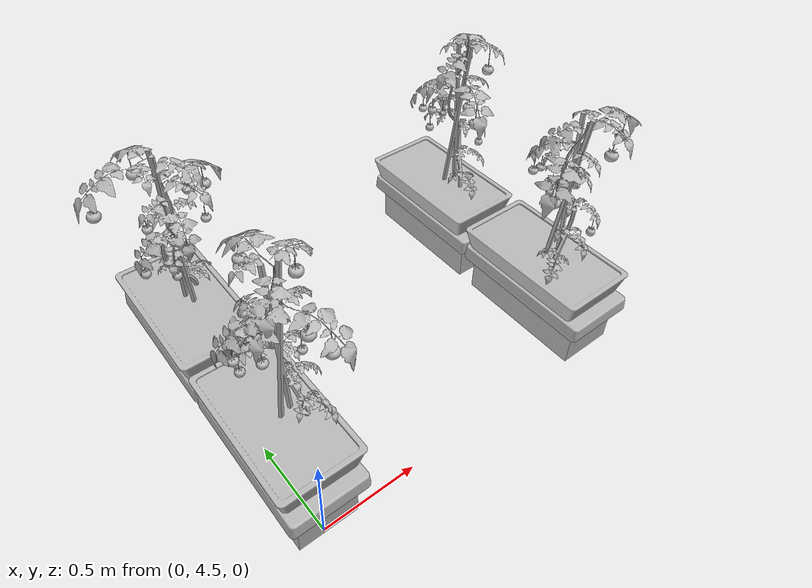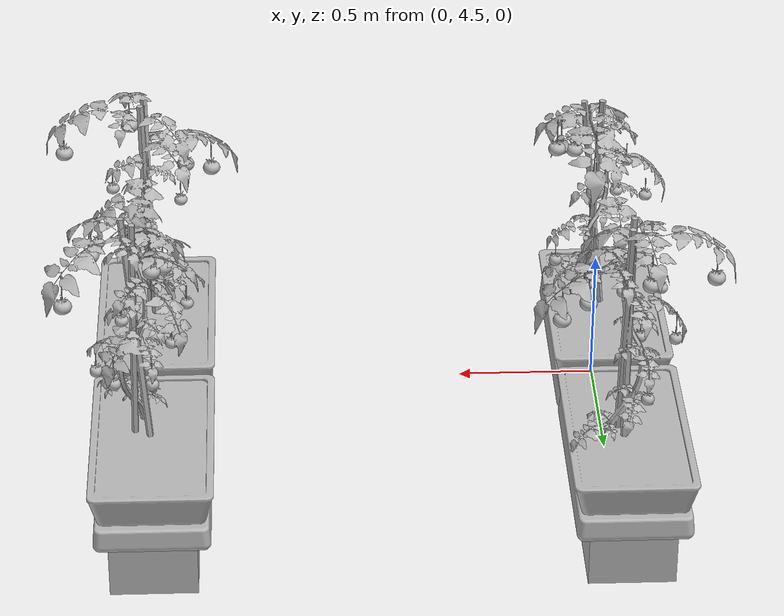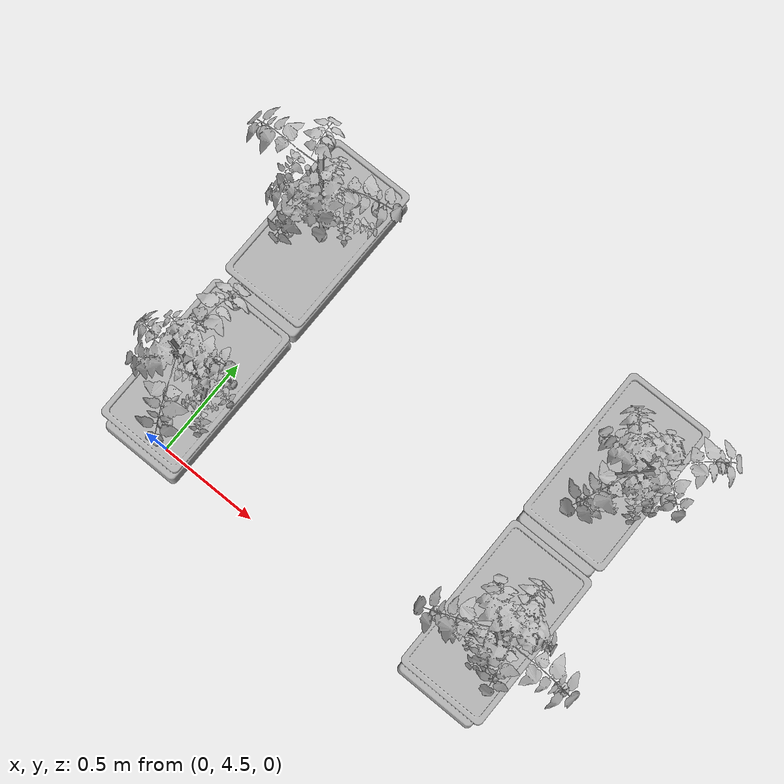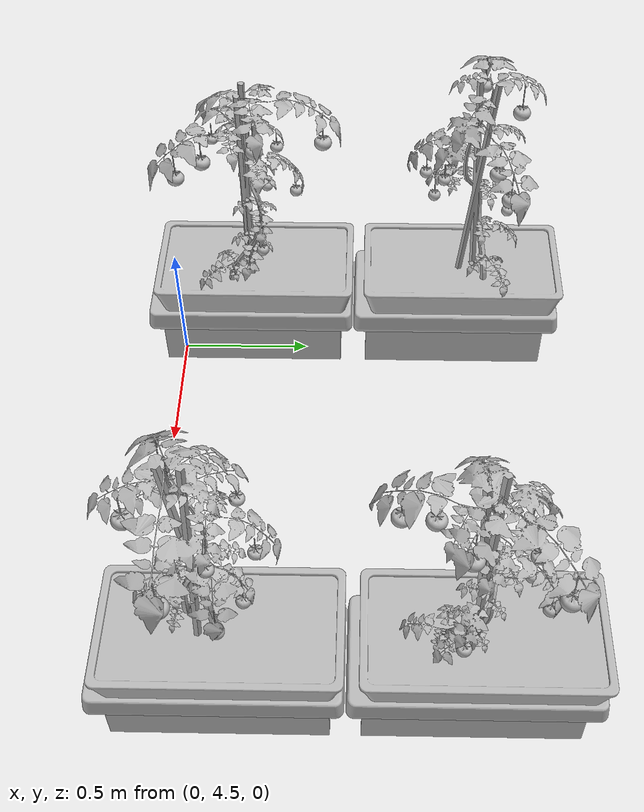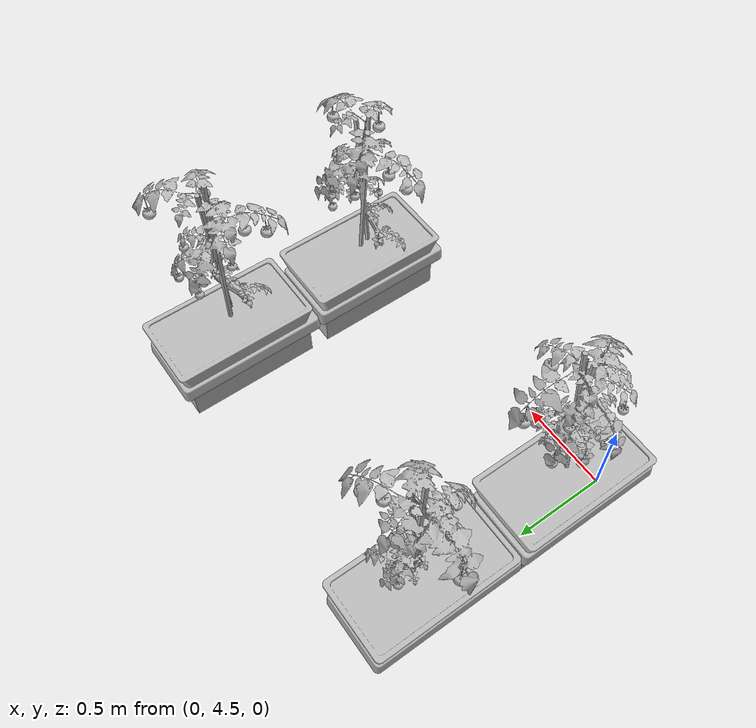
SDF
<sdf version="1.6">
 <world name="default">
  <model name="plant06">
   <static>0</static>
   <link name="tomato_plant_link">
    <inertial>
     <mass>20</mass>
     <inertia><ixx>1</ixx><ixy>0</ixy><ixz>0</ixz><iyy>1</iyy><iyz>0</iyz><izz>1</izz></inertia>
    </inertial>
    <visual name="visual">
     <geometry><mesh><uri>model://tomato_plant/meshes/tomato_plant.obj</uri></mesh></geometry>
    </visual>
    <collision name="collision">
     <pose>0 0 0.01 0 -0 0</pose>
     <geometry><cylinder><radius>0.2</radius><length>0.02</length></cylinder></geometry>
    </collision>
   </link>
   <link name="t_link_0">
    <pose>0.176111 0.046061 0.713729 0 -0 0</pose>
    <inertial>
     <mass>0.1</mass>
     <inertia><ixx>1</ixx><ixy>0</ixy><ixz>0</ixz><iyy>1</iyy><iyz>0</iyz><izz>1</izz></inertia>
    </inertial>
    <collision name="collision"><geometry><sphere><radius>0.02</radius></sphere></geometry></collision>
    <visual name="visual">
     <geometry><mesh><uri>model://green_tomato/meshes/green_tomato.obj</uri></mesh></geometry>
    </visual>
   </link>
   <joint name="t_joint_0" type="fixed">
    <parent>tomato_plant_link</parent>
    <child>t_link_0</child>
    <axis>
     <xyz>0 0 1</xyz>
     <use_parent_model_frame>1</use_parent_model_frame>
     <limit><lower>-1e+16</lower><upper>1e+16</upper></limit>
    </axis>
    <sensor name="force_torque" type="force_torque">
     <always_on>1</always_on>
     <update_rate>250</update_rate>
     <plugin name="breakable_0" filename="libBreakableJointPlugin.so">
      <breaking_force_N>20</breaking_force_N>
     </plugin>
    </sensor>
   </joint>
   <link name="t_link_1">
    <pose>0.063172 0.108629 0.685474 0 -0 0</pose>
    <inertial>
     <mass>0.1</mass>
     <inertia><ixx>1</ixx><ixy>0</ixy><ixz>0</ixz><iyy>1</iyy><iyz>0</iyz><izz>1</izz></inertia>
    </inertial>
    <collision name="collision"><geometry><sphere><radius>0.02</radius></sphere></geometry></collision>
    <visual name="visual">
     <geometry><mesh><uri>model://green_tomato/meshes/green_tomato.obj</uri></mesh></geometry>
    </visual>
   </link>
   <joint name="t_joint_1" type="fixed">
    <parent>tomato_plant_link</parent>
    <child>t_link_1</child>
    <axis>
     <xyz>0 0 1</xyz>
     <use_parent_model_frame>1</use_parent_model_frame>
     <limit><lower>-1e+16</lower><upper>1e+16</upper></limit>
    </axis>
    <sensor name="force_torque" type="force_torque">
     <always_on>1</always_on>
     <update_rate>250</update_rate>
     <plugin name="breakable_1" filename="libBreakableJointPlugin.so">
      <breaking_force_N>20</breaking_force_N>
     </plugin>
    </sensor>
   </joint>
   <link name="t_link_2">
    <pose>0.062027 -0.170581 0.614534 0 -0 0</pose>
    <inertial>
     <mass>0.1</mass>
     <inertia><ixx>1</ixx><ixy>0</ixy><ixz>0</ixz><iyy>1</iyy><iyz>0</iyz><izz>1</izz></inertia>
    </inertial>
    <collision name="collision"><geometry><sphere><radius>0.02</radius></sphere></geometry></collision>
    <visual name="visual">
     <geometry><mesh><uri>model://green_tomato/meshes/green_tomato.obj</uri></mesh></geometry>
    </visual>
   </link>
   <joint name="t_joint_2" type="fixed">
    <parent>tomato_plant_link</parent>
    <child>t_link_2</child>
    <axis>
     <xyz>0 0 1</xyz>
     <use_parent_model_frame>1</use_parent_model_frame>
     <limit><lower>-1e+16</lower><upper>1e+16</upper></limit>
    </axis>
    <sensor name="force_torque" type="force_torque">
     <always_on>1</always_on>
     <update_rate>250</update_rate>
     <plugin name="breakable_2" filename="libBreakableJointPlugin.so">
      <breaking_force_N>20</breaking_force_N>
     </plugin>
    </sensor>
   </joint>
   <link name="t_link_3">
    <pose>0.114746 0.0304 0.926457 0 -0 0</pose>
    <inertial>
     <mass>0.1</mass>
     <inertia><ixx>1</ixx><ixy>0</ixy><ixz>0</ixz><iyy>1</iyy><iyz>0</iyz><izz>1</izz></inertia>
    </inertial>
    <collision name="collision"><geometry><sphere><radius>0.02</radius></sphere></geometry></collision>
    <visual name="visual">
     <geometry><mesh><uri>model://yellow_tomato/meshes/yellow_tomato.obj</uri></mesh></geometry>
    </visual>
   </link>
   <joint name="t_joint_3" type="fixed">
    <parent>tomato_plant_link</parent>
    <child>t_link_3</child>
    <axis>
     <xyz>0 0 1</xyz>
     <use_parent_model_frame>1</use_parent_model_frame>
     <limit><lower>-1e+16</lower><upper>1e+16</upper></limit>
    </axis>
    <sensor name="force_torque" type="force_torque">
     <always_on>1</always_on>
     <update_rate>250</update_rate>
     <plugin name="breakable_3" filename="libBreakableJointPlugin.so">
      <breaking_force_N>20</breaking_force_N>
     </plugin>
    </sensor>
   </joint>
   <link name="t_link_4">
    <pose>0.003426 0.147925 0.840454 0 -0 0</pose>
    <inertial>
     <mass>0.1</mass>
     <inertia><ixx>1</ixx><ixy>0</ixy><ixz>0</ixz><iyy>1</iyy><iyz>0</iyz><izz>1</izz></inertia>
    </inertial>
    <collision name="collision"><geometry><sphere><radius>0.02</radius></sphere></geometry></collision>
    <visual name="visual">
     <geometry><mesh><uri>model://yellow_tomato/meshes/yellow_tomato.obj</uri></mesh></geometry>
    </visual>
   </link>
   <joint name="t_joint_4" type="fixed">
    <parent>tomato_plant_link</parent>
    <child>t_link_4</child>
    <axis>
     <xyz>0 0 1</xyz>
     <use_parent_model_frame>1</use_parent_model_frame>
     <limit><lower>-1e+16</lower><upper>1e+16</upper></limit>
    </axis>
    <sensor name="force_torque" type="force_torque">
     <always_on>1</always_on>
     <update_rate>250</update_rate>
     <plugin name="breakable_4" filename="libBreakableJointPlugin.so">
      <breaking_force_N>20</breaking_force_N>
     </plugin>
    </sensor>
   </joint>
   <link name="t_link_5">
    <pose>-0.12391 0.091553 0.91111 0 -0 0</pose>
    <inertial>
     <mass>0.1</mass>
     <inertia><ixx>1</ixx><ixy>0</ixy><ixz>0</ixz><iyy>1</iyy><iyz>0</iyz><izz>1</izz></inertia>
    </inertial>
    <collision name="collision"><geometry><sphere><radius>0.02</radius></sphere></geometry></collision>
    <visual name="visual">
     <geometry><mesh><uri>model://yellow_tomato/meshes/yellow_tomato.obj</uri></mesh></geometry>
    </visual>
   </link>
   <joint name="t_joint_5" type="fixed">
    <parent>tomato_plant_link</parent>
    <child>t_link_5</child>
    <axis>
     <xyz>0 0 1</xyz>
     <use_parent_model_frame>1</use_parent_model_frame>
     <limit><lower>-1e+16</lower><upper>1e+16</upper></limit>
    </axis>
    <sensor name="force_torque" type="force_torque">
     <always_on>1</always_on>
     <update_rate>250</update_rate>
     <plugin name="breakable_5" filename="libBreakableJointPlugin.so">
      <breaking_force_N>20</breaking_force_N>
     </plugin>
    </sensor>
   </joint>
   <link name="t_link_6">
    <pose>-0.23014 -0.132697 0.911579 0 -0 0</pose>
    <inertial>
     <mass>0.1</mass>
     <inertia><ixx>1</ixx><ixy>0</ixy><ixz>0</ixz><iyy>1</iyy><iyz>0</iyz><izz>1</izz></inertia>
    </inertial>
    <collision name="collision"><geometry><sphere><radius>0.03</radius></sphere></geometry></collision>
    <visual name="visual">
     <geometry><mesh><uri>model://red_tomato/meshes/red_tomato.obj</uri></mesh></geometry>
    </visual>
   </link>
   <joint name="t_joint_6" type="fixed">
    <parent>tomato_plant_link</parent>
    <child>t_link_6</child>
    <axis>
     <xyz>0 0 1</xyz>
     <use_parent_model_frame>1</use_parent_model_frame>
     <limit><lower>-1e+16</lower><upper>1e+16</upper></limit>
    </axis>
    <sensor name="force_torque" type="force_torque">
     <always_on>1</always_on>
     <update_rate>250</update_rate>
     <plugin name="breakable_6" filename="libBreakableJointPlugin.so">
      <breaking_force_N>20</breaking_force_N>
     </plugin>
    </sensor>
   </joint>
   <link name="t_link_7">
    <pose>-0.139776 -0.09326 0.950185 0 -0 0</pose>
    <inertial>
     <mass>0.1</mass>
     <inertia><ixx>1</ixx><ixy>0</ixy><ixz>0</ixz><iyy>1</iyy><iyz>0</iyz><izz>1</izz></inertia>
    </inertial>
    <collision name="collision"><geometry><sphere><radius>0.03</radius></sphere></geometry></collision>
    <visual name="visual">
     <geometry><mesh><uri>model://red_tomato/meshes/red_tomato.obj</uri></mesh></geometry>
    </visual>
   </link>
   <joint name="t_joint_7" type="fixed">
    <parent>tomato_plant_link</parent>
    <child>t_link_7</child>
    <axis>
     <xyz>0 0 1</xyz>
     <use_parent_model_frame>1</use_parent_model_frame>
     <limit><lower>-1e+16</lower><upper>1e+16</upper></limit>
    </axis>
    <sensor name="force_torque" type="force_torque">
     <always_on>1</always_on>
     <update_rate>250</update_rate>
     <plugin name="breakable_7" filename="libBreakableJointPlugin.so">
      <breaking_force_N>20</breaking_force_N>
     </plugin>
    </sensor>
   </joint>
   <link name="t_link_8">
    <pose>0.284181 -0.063758 1.01928 0 -0 0</pose>
    <inertial>
     <mass>0.1</mass>
     <inertia><ixx>1</ixx><ixy>0</ixy><ixz>0</ixz><iyy>1</iyy><iyz>0</iyz><izz>1</izz></inertia>
    </inertial>
    <collision name="collision"><geometry><sphere><radius>0.03</radius></sphere></geometry></collision>
    <visual name="visual">
     <geometry><mesh><uri>model://red_tomato/meshes/red_tomato.obj</uri></mesh></geometry>
    </visual>
   </link>
   <joint name="t_joint_8" type="fixed">
    <parent>tomato_plant_link</parent>
    <child>t_link_8</child>
    <axis>
     <xyz>0 0 1</xyz>
     <use_parent_model_frame>1</use_parent_model_frame>
     <limit><lower>-1e+16</lower><upper>1e+16</upper></limit>
    </axis>
    <sensor name="force_torque" type="force_torque">
     <always_on>1</always_on>
     <update_rate>250</update_rate>
     <plugin name="breakable_8" filename="libBreakableJointPlugin.so">
      <breaking_force_N>20</breaking_force_N>
     </plugin>
    </sensor>
   </joint>
   <link name="t_link_9">
    <pose>0.055319 -0.176349 1.06525 0 -0 0</pose>
    <inertial>
     <mass>0.1</mass>
     <inertia><ixx>1</ixx><ixy>0</ixy><ixz>0</ixz><iyy>1</iyy><iyz>0</iyz><izz>1</izz></inertia>
    </inertial>
    <collision name="collision"><geometry><sphere><radius>0.03</radius></sphere></geometry></collision>
    <visual name="visual">
     <geometry><mesh><uri>model://red_tomato/meshes/red_tomato.obj</uri></mesh></geometry>
    </visual>
   </link>
   <joint name="t_joint_9" type="fixed">
    <parent>tomato_plant_link</parent>
    <child>t_link_9</child>
    <axis>
     <xyz>0 0 1</xyz>
     <use_parent_model_frame>1</use_parent_model_frame>
     <limit><lower>-1e+16</lower><upper>1e+16</upper></limit>
    </axis>
    <sensor name="force_torque" type="force_torque">
     <always_on>1</always_on>
     <update_rate>250</update_rate>
     <plugin name="breakable_9" filename="libBreakableJointPlugin.so">
      <breaking_force_N>20</breaking_force_N>
     </plugin>
    </sensor>
   </joint>
   <pose>0.017428 4.80872 0.110542 0.0015 0.000799 1.56999</pose>
  </model>
  <model name="trough06">
   <static>1</static>
   <link name="trough_link">
    <visual name="visual"><geometry><mesh><uri>model://trough/meshes/truf.obj</uri></mesh></geometry></visual>
    <collision name="collision">
     <geometry><mesh><uri>model://trough/meshes/truf.obj</uri></mesh></geometry>
    </collision>
   </link>
   <link name="brick">
    <pose>0 -0.2 0 0 -0 0</pose>
    <visual name="visual"><geometry><mesh><uri>model://trough/meshes/brick.obj</uri></mesh></geometry></visual>
    <collision name="collision">
     <geometry><mesh><uri>model://trough/meshes/brick.obj</uri></mesh></geometry>
    </collision>
   </link>
   <pose>0 4.8 0.29 1.57 -0 1.57</pose>
  </model>
  <model name="plant07">
   <static>0</static>
   <link name="tomato_plant_link">
    <inertial>
     <mass>20</mass>
     <inertia><ixx>1</ixx><ixy>0</ixy><ixz>0</ixz><iyy>1</iyy><iyz>0</iyz><izz>1</izz></inertia>
    </inertial>
    <visual name="visual">
     <geometry><mesh><uri>model://tomato_plant/meshes/tomato_plant.obj</uri></mesh></geometry>
    </visual>
    <collision name="collision">
     <pose>0 0 0.01 0 -0 0</pose>
     <geometry><cylinder><radius>0.2</radius><length>0.02</length></cylinder></geometry>
    </collision>
   </link>
   <link name="t_link_0">
    <pose>0.176111 0.046061 0.713729 0 -0 0</pose>
    <inertial>
     <mass>0.1</mass>
     <inertia><ixx>1</ixx><ixy>0</ixy><ixz>0</ixz><iyy>1</iyy><iyz>0</iyz><izz>1</izz></inertia>
    </inertial>
    <collision name="collision"><geometry><sphere><radius>0.02</radius></sphere></geometry></collision>
    <visual name="visual">
     <geometry><mesh><uri>model://green_tomato/meshes/green_tomato.obj</uri></mesh></geometry>
    </visual>
   </link>
   <joint name="t_joint_0" type="fixed">
    <parent>tomato_plant_link</parent>
    <child>t_link_0</child>
    <axis>
     <xyz>0 0 1</xyz>
     <use_parent_model_frame>1</use_parent_model_frame>
     <limit><lower>-1e+16</lower><upper>1e+16</upper></limit>
    </axis>
    <sensor name="force_torque" type="force_torque">
     <always_on>1</always_on>
     <update_rate>250</update_rate>
     <plugin name="breakable_0" filename="libBreakableJointPlugin.so">
      <breaking_force_N>20</breaking_force_N>
     </plugin>
    </sensor>
   </joint>
   <link name="t_link_1">
    <pose>0.063172 0.108629 0.685474 0 -0 0</pose>
    <inertial>
     <mass>0.1</mass>
     <inertia><ixx>1</ixx><ixy>0</ixy><ixz>0</ixz><iyy>1</iyy><iyz>0</iyz><izz>1</izz></inertia>
    </inertial>
    <collision name="collision"><geometry><sphere><radius>0.02</radius></sphere></geometry></collision>
    <visual name="visual">
     <geometry><mesh><uri>model://green_tomato/meshes/green_tomato.obj</uri></mesh></geometry>
    </visual>
   </link>
   <joint name="t_joint_1" type="fixed">
    <parent>tomato_plant_link</parent>
    <child>t_link_1</child>
    <axis>
     <xyz>0 0 1</xyz>
     <use_parent_model_frame>1</use_parent_model_frame>
     <limit><lower>-1e+16</lower><upper>1e+16</upper></limit>
    </axis>
    <sensor name="force_torque" type="force_torque">
     <always_on>1</always_on>
     <update_rate>250</update_rate>
     <plugin name="breakable_1" filename="libBreakableJointPlugin.so">
      <breaking_force_N>20</breaking_force_N>
     </plugin>
    </sensor>
   </joint>
   <link name="t_link_2">
    <pose>0.062027 -0.170581 0.614534 0 -0 0</pose>
    <inertial>
     <mass>0.1</mass>
     <inertia><ixx>1</ixx><ixy>0</ixy><ixz>0</ixz><iyy>1</iyy><iyz>0</iyz><izz>1</izz></inertia>
    </inertial>
    <collision name="collision"><geometry><sphere><radius>0.02</radius></sphere></geometry></collision>
    <visual name="visual">
     <geometry><mesh><uri>model://green_tomato/meshes/green_tomato.obj</uri></mesh></geometry>
    </visual>
   </link>
   <joint name="t_joint_2" type="fixed">
    <parent>tomato_plant_link</parent>
    <child>t_link_2</child>
    <axis>
     <xyz>0 0 1</xyz>
     <use_parent_model_frame>1</use_parent_model_frame>
     <limit><lower>-1e+16</lower><upper>1e+16</upper></limit>
    </axis>
    <sensor name="force_torque" type="force_torque">
     <always_on>1</always_on>
     <update_rate>250</update_rate>
     <plugin name="breakable_2" filename="libBreakableJointPlugin.so">
      <breaking_force_N>20</breaking_force_N>
     </plugin>
    </sensor>
   </joint>
   <link name="t_link_3">
    <pose>0.114746 0.0304 0.926457 0 -0 0</pose>
    <inertial>
     <mass>0.1</mass>
     <inertia><ixx>1</ixx><ixy>0</ixy><ixz>0</ixz><iyy>1</iyy><iyz>0</iyz><izz>1</izz></inertia>
    </inertial>
    <collision name="collision"><geometry><sphere><radius>0.02</radius></sphere></geometry></collision>
    <visual name="visual">
     <geometry><mesh><uri>model://yellow_tomato/meshes/yellow_tomato.obj</uri></mesh></geometry>
    </visual>
   </link>
   <joint name="t_joint_3" type="fixed">
    <parent>tomato_plant_link</parent>
    <child>t_link_3</child>
    <axis>
     <xyz>0 0 1</xyz>
     <use_parent_model_frame>1</use_parent_model_frame>
     <limit><lower>-1e+16</lower><upper>1e+16</upper></limit>
    </axis>
    <sensor name="force_torque" type="force_torque">
     <always_on>1</always_on>
     <update_rate>250</update_rate>
     <plugin name="breakable_3" filename="libBreakableJointPlugin.so">
      <breaking_force_N>20</breaking_force_N>
     </plugin>
    </sensor>
   </joint>
   <link name="t_link_4">
    <pose>0.003426 0.147925 0.840454 0 -0 0</pose>
    <inertial>
     <mass>0.1</mass>
     <inertia><ixx>1</ixx><ixy>0</ixy><ixz>0</ixz><iyy>1</iyy><iyz>0</iyz><izz>1</izz></inertia>
    </inertial>
    <collision name="collision"><geometry><sphere><radius>0.02</radius></sphere></geometry></collision>
    <visual name="visual">
     <geometry><mesh><uri>model://yellow_tomato/meshes/yellow_tomato.obj</uri></mesh></geometry>
    </visual>
   </link>
   <joint name="t_joint_4" type="fixed">
    <parent>tomato_plant_link</parent>
    <child>t_link_4</child>
    <axis>
     <xyz>0 0 1</xyz>
     <use_parent_model_frame>1</use_parent_model_frame>
     <limit><lower>-1e+16</lower><upper>1e+16</upper></limit>
    </axis>
    <sensor name="force_torque" type="force_torque">
     <always_on>1</always_on>
     <update_rate>250</update_rate>
     <plugin name="breakable_4" filename="libBreakableJointPlugin.so">
      <breaking_force_N>20</breaking_force_N>
     </plugin>
    </sensor>
   </joint>
   <link name="t_link_5">
    <pose>-0.12391 0.091553 0.91111 0 -0 0</pose>
    <inertial>
     <mass>0.1</mass>
     <inertia><ixx>1</ixx><ixy>0</ixy><ixz>0</ixz><iyy>1</iyy><iyz>0</iyz><izz>1</izz></inertia>
    </inertial>
    <collision name="collision"><geometry><sphere><radius>0.02</radius></sphere></geometry></collision>
    <visual name="visual">
     <geometry><mesh><uri>model://yellow_tomato/meshes/yellow_tomato.obj</uri></mesh></geometry>
    </visual>
   </link>
   <joint name="t_joint_5" type="fixed">
    <parent>tomato_plant_link</parent>
    <child>t_link_5</child>
    <axis>
     <xyz>0 0 1</xyz>
     <use_parent_model_frame>1</use_parent_model_frame>
     <limit><lower>-1e+16</lower><upper>1e+16</upper></limit>
    </axis>
    <sensor name="force_torque" type="force_torque">
     <always_on>1</always_on>
     <update_rate>250</update_rate>
     <plugin name="breakable_5" filename="libBreakableJointPlugin.so">
      <breaking_force_N>20</breaking_force_N>
     </plugin>
    </sensor>
   </joint>
   <link name="t_link_6">
    <pose>-0.23014 -0.132697 0.911579 0 -0 0</pose>
    <inertial>
     <mass>0.1</mass>
     <inertia><ixx>1</ixx><ixy>0</ixy><ixz>0</ixz><iyy>1</iyy><iyz>0</iyz><izz>1</izz></inertia>
    </inertial>
    <collision name="collision"><geometry><sphere><radius>0.03</radius></sphere></geometry></collision>
    <visual name="visual">
     <geometry><mesh><uri>model://red_tomato/meshes/red_tomato.obj</uri></mesh></geometry>
    </visual>
   </link>
   <joint name="t_joint_6" type="fixed">
    <parent>tomato_plant_link</parent>
    <child>t_link_6</child>
    <axis>
     <xyz>0 0 1</xyz>
     <use_parent_model_frame>1</use_parent_model_frame>
     <limit><lower>-1e+16</lower><upper>1e+16</upper></limit>
    </axis>
    <sensor name="force_torque" type="force_torque">
     <always_on>1</always_on>
     <update_rate>250</update_rate>
     <plugin name="breakable_6" filename="libBreakableJointPlugin.so">
      <breaking_force_N>20</breaking_force_N>
     </plugin>
    </sensor>
   </joint>
   <link name="t_link_7">
    <pose>-0.139776 -0.09326 0.950185 0 -0 0</pose>
    <inertial>
     <mass>0.1</mass>
     <inertia><ixx>1</ixx><ixy>0</ixy><ixz>0</ixz><iyy>1</iyy><iyz>0</iyz><izz>1</izz></inertia>
    </inertial>
    <collision name="collision"><geometry><sphere><radius>0.03</radius></sphere></geometry></collision>
    <visual name="visual">
     <geometry><mesh><uri>model://red_tomato/meshes/red_tomato.obj</uri></mesh></geometry>
    </visual>
   </link>
   <joint name="t_joint_7" type="fixed">
    <parent>tomato_plant_link</parent>
    <child>t_link_7</child>
    <axis>
     <xyz>0 0 1</xyz>
     <use_parent_model_frame>1</use_parent_model_frame>
     <limit><lower>-1e+16</lower><upper>1e+16</upper></limit>
    </axis>
    <sensor name="force_torque" type="force_torque">
     <always_on>1</always_on>
     <update_rate>250</update_rate>
     <plugin name="breakable_7" filename="libBreakableJointPlugin.so">
      <breaking_force_N>20</breaking_force_N>
     </plugin>
    </sensor>
   </joint>
   <link name="t_link_8">
    <pose>0.284181 -0.063758 1.01928 0 -0 0</pose>
    <inertial>
     <mass>0.1</mass>
     <inertia><ixx>1</ixx><ixy>0</ixy><ixz>0</ixz><iyy>1</iyy><iyz>0</iyz><izz>1</izz></inertia>
    </inertial>
    <collision name="collision"><geometry><sphere><radius>0.03</radius></sphere></geometry></collision>
    <visual name="visual">
     <geometry><mesh><uri>model://red_tomato/meshes/red_tomato.obj</uri></mesh></geometry>
    </visual>
   </link>
   <joint name="t_joint_8" type="fixed">
    <parent>tomato_plant_link</parent>
    <child>t_link_8</child>
    <axis>
     <xyz>0 0 1</xyz>
     <use_parent_model_frame>1</use_parent_model_frame>
     <limit><lower>-1e+16</lower><upper>1e+16</upper></limit>
    </axis>
    <sensor name="force_torque" type="force_torque">
     <always_on>1</always_on>
     <update_rate>250</update_rate>
     <plugin name="breakable_8" filename="libBreakableJointPlugin.so">
      <breaking_force_N>20</breaking_force_N>
     </plugin>
    </sensor>
   </joint>
   <link name="t_link_9">
    <pose>0.055319 -0.176349 1.06525 0 -0 0</pose>
    <inertial>
     <mass>0.1</mass>
     <inertia><ixx>1</ixx><ixy>0</ixy><ixz>0</ixz><iyy>1</iyy><iyz>0</iyz><izz>1</izz></inertia>
    </inertial>
    <collision name="collision"><geometry><sphere><radius>0.03</radius></sphere></geometry></collision>
    <visual name="visual">
     <geometry><mesh><uri>model://red_tomato/meshes/red_tomato.obj</uri></mesh></geometry>
    </visual>
   </link>
   <joint name="t_joint_9" type="fixed">
    <parent>tomato_plant_link</parent>
    <child>t_link_9</child>
    <axis>
     <xyz>0 0 1</xyz>
     <use_parent_model_frame>1</use_parent_model_frame>
     <limit><lower>-1e+16</lower><upper>1e+16</upper></limit>
    </axis>
    <sensor name="force_torque" type="force_torque">
     <always_on>1</always_on>
     <update_rate>250</update_rate>
     <plugin name="breakable_9" filename="libBreakableJointPlugin.so">
      <breaking_force_N>20</breaking_force_N>
     </plugin>
    </sensor>
   </joint>
   <pose>0.017353 5.60868 0.109943 0.000578 -0.001417 3.13996</pose>
  </model>
  <model name="trough07">
   <static>1</static>
   <link name="trough_link">
    <visual name="visual"><geometry><mesh><uri>model://trough/meshes/truf.obj</uri></mesh></geometry></visual>
    <collision name="collision">
     <geometry><mesh><uri>model://trough/meshes/truf.obj</uri></mesh></geometry>
    </collision>
   </link>
   <link name="brick">
    <pose>0 -0.2 0 0 -0 0</pose>
    <visual name="visual"><geometry><mesh><uri>model://trough/meshes/brick.obj</uri></mesh></geometry></visual>
    <collision name="collision">
     <geometry><mesh><uri>model://trough/meshes/brick.obj</uri></mesh></geometry>
    </collision>
   </link>
   <pose>0 5.6 0.29 1.57 -0 1.57</pose>
  </model>
  <model name="plant16">
   <static>0</static>
   <link name="tomato_plant_link">
    <inertial>
     <mass>20</mass>
     <inertia><ixx>1</ixx><ixy>0</ixy><ixz>0</ixz><iyy>1</iyy><iyz>0</iyz><izz>1</izz></inertia>
    </inertial>
    <visual name="visual">
     <geometry><mesh><uri>model://tomato_plant/meshes/tomato_plant.obj</uri></mesh></geometry>
    </visual>
    <collision name="collision">
     <pose>0 0 0.01 0 -0 0</pose>
     <geometry><cylinder><radius>0.2</radius><length>0.02</length></cylinder></geometry>
    </collision>
   </link>
   <link name="t_link_0">
    <pose>0.176111 0.046061 0.713729 0 -0 0</pose>
    <inertial>
     <mass>0.1</mass>
     <inertia><ixx>1</ixx><ixy>0</ixy><ixz>0</ixz><iyy>1</iyy><iyz>0</iyz><izz>1</izz></inertia>
    </inertial>
    <collision name="collision"><geometry><sphere><radius>0.02</radius></sphere></geometry></collision>
    <visual name="visual">
     <geometry><mesh><uri>model://green_tomato/meshes/green_tomato.obj</uri></mesh></geometry>
    </visual>
   </link>
   <joint name="t_joint_0" type="fixed">
    <parent>tomato_plant_link</parent>
    <child>t_link_0</child>
    <axis>
     <xyz>0 0 1</xyz>
     <use_parent_model_frame>1</use_parent_model_frame>
     <limit><lower>-1e+16</lower><upper>1e+16</upper></limit>
    </axis>
    <sensor name="force_torque" type="force_torque">
     <always_on>1</always_on>
     <update_rate>250</update_rate>
     <plugin name="breakable_0" filename="libBreakableJointPlugin.so">
      <breaking_force_N>20</breaking_force_N>
     </plugin>
    </sensor>
   </joint>
   <link name="t_link_1">
    <pose>0.063172 0.108629 0.685474 0 -0 0</pose>
    <inertial>
     <mass>0.1</mass>
     <inertia><ixx>1</ixx><ixy>0</ixy><ixz>0</ixz><iyy>1</iyy><iyz>0</iyz><izz>1</izz></inertia>
    </inertial>
    <collision name="collision"><geometry><sphere><radius>0.02</radius></sphere></geometry></collision>
    <visual name="visual">
     <geometry><mesh><uri>model://green_tomato/meshes/green_tomato.obj</uri></mesh></geometry>
    </visual>
   </link>
   <joint name="t_joint_1" type="fixed">
    <parent>tomato_plant_link</parent>
    <child>t_link_1</child>
    <axis>
     <xyz>0 0 1</xyz>
     <use_parent_model_frame>1</use_parent_model_frame>
     <limit><lower>-1e+16</lower><upper>1e+16</upper></limit>
    </axis>
    <sensor name="force_torque" type="force_torque">
     <always_on>1</always_on>
     <update_rate>250</update_rate>
     <plugin name="breakable_1" filename="libBreakableJointPlugin.so">
      <breaking_force_N>20</breaking_force_N>
     </plugin>
    </sensor>
   </joint>
   <link name="t_link_2">
    <pose>0.062027 -0.170581 0.614534 0 -0 0</pose>
    <inertial>
     <mass>0.1</mass>
     <inertia><ixx>1</ixx><ixy>0</ixy><ixz>0</ixz><iyy>1</iyy><iyz>0</iyz><izz>1</izz></inertia>
    </inertial>
    <collision name="collision"><geometry><sphere><radius>0.02</radius></sphere></geometry></collision>
    <visual name="visual">
     <geometry><mesh><uri>model://green_tomato/meshes/green_tomato.obj</uri></mesh></geometry>
    </visual>
   </link>
   <joint name="t_joint_2" type="fixed">
    <parent>tomato_plant_link</parent>
    <child>t_link_2</child>
    <axis>
     <xyz>0 0 1</xyz>
     <use_parent_model_frame>1</use_parent_model_frame>
     <limit><lower>-1e+16</lower><upper>1e+16</upper></limit>
    </axis>
    <sensor name="force_torque" type="force_torque">
     <always_on>1</always_on>
     <update_rate>250</update_rate>
     <plugin name="breakable_2" filename="libBreakableJointPlugin.so">
      <breaking_force_N>20</breaking_force_N>
     </plugin>
    </sensor>
   </joint>
   <link name="t_link_3">
    <pose>0.114746 0.0304 0.926457 0 -0 0</pose>
    <inertial>
     <mass>0.1</mass>
     <inertia><ixx>1</ixx><ixy>0</ixy><ixz>0</ixz><iyy>1</iyy><iyz>0</iyz><izz>1</izz></inertia>
    </inertial>
    <collision name="collision"><geometry><sphere><radius>0.02</radius></sphere></geometry></collision>
    <visual name="visual">
     <geometry><mesh><uri>model://yellow_tomato/meshes/yellow_tomato.obj</uri></mesh></geometry>
    </visual>
   </link>
   <joint name="t_joint_3" type="fixed">
    <parent>tomato_plant_link</parent>
    <child>t_link_3</child>
    <axis>
     <xyz>0 0 1</xyz>
     <use_parent_model_frame>1</use_parent_model_frame>
     <limit><lower>-1e+16</lower><upper>1e+16</upper></limit>
    </axis>
    <sensor name="force_torque" type="force_torque">
     <always_on>1</always_on>
     <update_rate>250</update_rate>
     <plugin name="breakable_3" filename="libBreakableJointPlugin.so">
      <breaking_force_N>20</breaking_force_N>
     </plugin>
    </sensor>
   </joint>
   <link name="t_link_4">
    <pose>0.003426 0.147925 0.840454 0 -0 0</pose>
    <inertial>
     <mass>0.1</mass>
     <inertia><ixx>1</ixx><ixy>0</ixy><ixz>0</ixz><iyy>1</iyy><iyz>0</iyz><izz>1</izz></inertia>
    </inertial>
    <collision name="collision"><geometry><sphere><radius>0.02</radius></sphere></geometry></collision>
    <visual name="visual">
     <geometry><mesh><uri>model://yellow_tomato/meshes/yellow_tomato.obj</uri></mesh></geometry>
    </visual>
   </link>
   <joint name="t_joint_4" type="fixed">
    <parent>tomato_plant_link</parent>
    <child>t_link_4</child>
    <axis>
     <xyz>0 0 1</xyz>
     <use_parent_model_frame>1</use_parent_model_frame>
     <limit><lower>-1e+16</lower><upper>1e+16</upper></limit>
    </axis>
    <sensor name="force_torque" type="force_torque">
     <always_on>1</always_on>
     <update_rate>250</update_rate>
     <plugin name="breakable_4" filename="libBreakableJointPlugin.so">
      <breaking_force_N>20</breaking_force_N>
     </plugin>
    </sensor>
   </joint>
   <link name="t_link_5">
    <pose>-0.12391 0.091553 0.91111 0 -0 0</pose>
    <inertial>
     <mass>0.1</mass>
     <inertia><ixx>1</ixx><ixy>0</ixy><ixz>0</ixz><iyy>1</iyy><iyz>0</iyz><izz>1</izz></inertia>
    </inertial>
    <collision name="collision"><geometry><sphere><radius>0.02</radius></sphere></geometry></collision>
    <visual name="visual">
     <geometry><mesh><uri>model://yellow_tomato/meshes/yellow_tomato.obj</uri></mesh></geometry>
    </visual>
   </link>
   <joint name="t_joint_5" type="fixed">
    <parent>tomato_plant_link</parent>
    <child>t_link_5</child>
    <axis>
     <xyz>0 0 1</xyz>
     <use_parent_model_frame>1</use_parent_model_frame>
     <limit><lower>-1e+16</lower><upper>1e+16</upper></limit>
    </axis>
    <sensor name="force_torque" type="force_torque">
     <always_on>1</always_on>
     <update_rate>250</update_rate>
     <plugin name="breakable_5" filename="libBreakableJointPlugin.so">
      <breaking_force_N>20</breaking_force_N>
     </plugin>
    </sensor>
   </joint>
   <link name="t_link_6">
    <pose>-0.23014 -0.132697 0.911579 0 -0 0</pose>
    <inertial>
     <mass>0.1</mass>
     <inertia><ixx>1</ixx><ixy>0</ixy><ixz>0</ixz><iyy>1</iyy><iyz>0</iyz><izz>1</izz></inertia>
    </inertial>
    <collision name="collision"><geometry><sphere><radius>0.03</radius></sphere></geometry></collision>
    <visual name="visual">
     <geometry><mesh><uri>model://red_tomato/meshes/red_tomato.obj</uri></mesh></geometry>
    </visual>
   </link>
   <joint name="t_joint_6" type="fixed">
    <parent>tomato_plant_link</parent>
    <child>t_link_6</child>
    <axis>
     <xyz>0 0 1</xyz>
     <use_parent_model_frame>1</use_parent_model_frame>
     <limit><lower>-1e+16</lower><upper>1e+16</upper></limit>
    </axis>
    <sensor name="force_torque" type="force_torque">
     <always_on>1</always_on>
     <update_rate>250</update_rate>
     <plugin name="breakable_6" filename="libBreakableJointPlugin.so">
      <breaking_force_N>20</breaking_force_N>
     </plugin>
    </sensor>
   </joint>
   <link name="t_link_7">
    <pose>-0.139776 -0.09326 0.950185 0 -0 0</pose>
    <inertial>
     <mass>0.1</mass>
     <inertia><ixx>1</ixx><ixy>0</ixy><ixz>0</ixz><iyy>1</iyy><iyz>0</iyz><izz>1</izz></inertia>
    </inertial>
    <collision name="collision"><geometry><sphere><radius>0.03</radius></sphere></geometry></collision>
    <visual name="visual">
     <geometry><mesh><uri>model://red_tomato/meshes/red_tomato.obj</uri></mesh></geometry>
    </visual>
   </link>
   <joint name="t_joint_7" type="fixed">
    <parent>tomato_plant_link</parent>
    <child>t_link_7</child>
    <axis>
     <xyz>0 0 1</xyz>
     <use_parent_model_frame>1</use_parent_model_frame>
     <limit><lower>-1e+16</lower><upper>1e+16</upper></limit>
    </axis>
    <sensor name="force_torque" type="force_torque">
     <always_on>1</always_on>
     <update_rate>250</update_rate>
     <plugin name="breakable_7" filename="libBreakableJointPlugin.so">
      <breaking_force_N>20</breaking_force_N>
     </plugin>
    </sensor>
   </joint>
   <link name="t_link_8">
    <pose>0.284181 -0.063758 1.01928 0 -0 0</pose>
    <inertial>
     <mass>0.1</mass>
     <inertia><ixx>1</ixx><ixy>0</ixy><ixz>0</ixz><iyy>1</iyy><iyz>0</iyz><izz>1</izz></inertia>
    </inertial>
    <collision name="collision"><geometry><sphere><radius>0.03</radius></sphere></geometry></collision>
    <visual name="visual">
     <geometry><mesh><uri>model://red_tomato/meshes/red_tomato.obj</uri></mesh></geometry>
    </visual>
   </link>
   <joint name="t_joint_8" type="fixed">
    <parent>tomato_plant_link</parent>
    <child>t_link_8</child>
    <axis>
     <xyz>0 0 1</xyz>
     <use_parent_model_frame>1</use_parent_model_frame>
     <limit><lower>-1e+16</lower><upper>1e+16</upper></limit>
    </axis>
    <sensor name="force_torque" type="force_torque">
     <always_on>1</always_on>
     <update_rate>250</update_rate>
     <plugin name="breakable_8" filename="libBreakableJointPlugin.so">
      <breaking_force_N>20</breaking_force_N>
     </plugin>
    </sensor>
   </joint>
   <link name="t_link_9">
    <pose>0.055319 -0.176349 1.06525 0 -0 0</pose>
    <inertial>
     <mass>0.1</mass>
     <inertia><ixx>1</ixx><ixy>0</ixy><ixz>0</ixz><iyy>1</iyy><iyz>0</iyz><izz>1</izz></inertia>
    </inertial>
    <collision name="collision"><geometry><sphere><radius>0.03</radius></sphere></geometry></collision>
    <visual name="visual">
     <geometry><mesh><uri>model://red_tomato/meshes/red_tomato.obj</uri></mesh></geometry>
    </visual>
   </link>
   <joint name="t_joint_9" type="fixed">
    <parent>tomato_plant_link</parent>
    <child>t_link_9</child>
    <axis>
     <xyz>0 0 1</xyz>
     <use_parent_model_frame>1</use_parent_model_frame>
     <limit><lower>-1e+16</lower><upper>1e+16</upper></limit>
    </axis>
    <sensor name="force_torque" type="force_torque">
     <always_on>1</always_on>
     <update_rate>250</update_rate>
     <plugin name="breakable_9" filename="libBreakableJointPlugin.so">
      <breaking_force_N>20</breaking_force_N>
     </plugin>
    </sensor>
   </joint>
   <pose>1.63708 4.80833 0.107889 -0.000679 0.001875 -0.000255</pose>
  </model>
  <model name="trough16">
   <static>1</static>
   <link name="trough_link">
    <visual name="visual"><geometry><mesh><uri>model://trough/meshes/truf.obj</uri></mesh></geometry></visual>
    <collision name="collision">
     <geometry><mesh><uri>model://trough/meshes/truf.obj</uri></mesh></geometry>
    </collision>
   </link>
   <link name="brick">
    <pose>0 -0.2 0 0 -0 0</pose>
    <visual name="visual"><geometry><mesh><uri>model://trough/meshes/brick.obj</uri></mesh></geometry></visual>
    <collision name="collision">
     <geometry><mesh><uri>model://trough/meshes/brick.obj</uri></mesh></geometry>
    </collision>
   </link>
   <pose>1.62 4.8 0.29 1.57 -0 1.57</pose>
  </model>
  <model name="plant17">
   <static>0</static>
   <link name="tomato_plant_link">
    <inertial>
     <mass>20</mass>
     <inertia><ixx>1</ixx><ixy>0</ixy><ixz>0</ixz><iyy>1</iyy><iyz>0</iyz><izz>1</izz></inertia>
    </inertial>
    <visual name="visual">
     <geometry><mesh><uri>model://tomato_plant/meshes/tomato_plant.obj</uri></mesh></geometry>
    </visual>
    <collision name="collision">
     <pose>0 0 0.01 0 -0 0</pose>
     <geometry><cylinder><radius>0.2</radius><length>0.02</length></cylinder></geometry>
    </collision>
   </link>
   <link name="t_link_0">
    <pose>0.176111 0.046061 0.713729 0 -0 0</pose>
    <inertial>
     <mass>0.1</mass>
     <inertia><ixx>1</ixx><ixy>0</ixy><ixz>0</ixz><iyy>1</iyy><iyz>0</iyz><izz>1</izz></inertia>
    </inertial>
    <collision name="collision"><geometry><sphere><radius>0.02</radius></sphere></geometry></collision>
    <visual name="visual">
     <geometry><mesh><uri>model://green_tomato/meshes/green_tomato.obj</uri></mesh></geometry>
    </visual>
   </link>
   <joint name="t_joint_0" type="fixed">
    <parent>tomato_plant_link</parent>
    <child>t_link_0</child>
    <axis>
     <xyz>0 0 1</xyz>
     <use_parent_model_frame>1</use_parent_model_frame>
     <limit><lower>-1e+16</lower><upper>1e+16</upper></limit>
    </axis>
    <sensor name="force_torque" type="force_torque">
     <always_on>1</always_on>
     <update_rate>250</update_rate>
     <plugin name="breakable_0" filename="libBreakableJointPlugin.so">
      <breaking_force_N>20</breaking_force_N>
     </plugin>
    </sensor>
   </joint>
   <link name="t_link_1">
    <pose>0.063172 0.108629 0.685474 0 -0 0</pose>
    <inertial>
     <mass>0.1</mass>
     <inertia><ixx>1</ixx><ixy>0</ixy><ixz>0</ixz><iyy>1</iyy><iyz>0</iyz><izz>1</izz></inertia>
    </inertial>
    <collision name="collision"><geometry><sphere><radius>0.02</radius></sphere></geometry></collision>
    <visual name="visual">
     <geometry><mesh><uri>model://green_tomato/meshes/green_tomato.obj</uri></mesh></geometry>
    </visual>
   </link>
   <joint name="t_joint_1" type="fixed">
    <parent>tomato_plant_link</parent>
    <child>t_link_1</child>
    <axis>
     <xyz>0 0 1</xyz>
     <use_parent_model_frame>1</use_parent_model_frame>
     <limit><lower>-1e+16</lower><upper>1e+16</upper></limit>
    </axis>
    <sensor name="force_torque" type="force_torque">
     <always_on>1</always_on>
     <update_rate>250</update_rate>
     <plugin name="breakable_1" filename="libBreakableJointPlugin.so">
      <breaking_force_N>20</breaking_force_N>
     </plugin>
    </sensor>
   </joint>
   <link name="t_link_2">
    <pose>0.062027 -0.170581 0.614534 0 -0 0</pose>
    <inertial>
     <mass>0.1</mass>
     <inertia><ixx>1</ixx><ixy>0</ixy><ixz>0</ixz><iyy>1</iyy><iyz>0</iyz><izz>1</izz></inertia>
    </inertial>
    <collision name="collision"><geometry><sphere><radius>0.02</radius></sphere></geometry></collision>
    <visual name="visual">
     <geometry><mesh><uri>model://green_tomato/meshes/green_tomato.obj</uri></mesh></geometry>
    </visual>
   </link>
   <joint name="t_joint_2" type="fixed">
    <parent>tomato_plant_link</parent>
    <child>t_link_2</child>
    <axis>
     <xyz>0 0 1</xyz>
     <use_parent_model_frame>1</use_parent_model_frame>
     <limit><lower>-1e+16</lower><upper>1e+16</upper></limit>
    </axis>
    <sensor name="force_torque" type="force_torque">
     <always_on>1</always_on>
     <update_rate>250</update_rate>
     <plugin name="breakable_2" filename="libBreakableJointPlugin.so">
      <breaking_force_N>20</breaking_force_N>
     </plugin>
    </sensor>
   </joint>
   <link name="t_link_3">
    <pose>0.114746 0.0304 0.926457 0 -0 0</pose>
    <inertial>
     <mass>0.1</mass>
     <inertia><ixx>1</ixx><ixy>0</ixy><ixz>0</ixz><iyy>1</iyy><iyz>0</iyz><izz>1</izz></inertia>
    </inertial>
    <collision name="collision"><geometry><sphere><radius>0.02</radius></sphere></geometry></collision>
    <visual name="visual">
     <geometry><mesh><uri>model://yellow_tomato/meshes/yellow_tomato.obj</uri></mesh></geometry>
    </visual>
   </link>
   <joint name="t_joint_3" type="fixed">
    <parent>tomato_plant_link</parent>
    <child>t_link_3</child>
    <axis>
     <xyz>0 0 1</xyz>
     <use_parent_model_frame>1</use_parent_model_frame>
     <limit><lower>-1e+16</lower><upper>1e+16</upper></limit>
    </axis>
    <sensor name="force_torque" type="force_torque">
     <always_on>1</always_on>
     <update_rate>250</update_rate>
     <plugin name="breakable_3" filename="libBreakableJointPlugin.so">
      <breaking_force_N>20</breaking_force_N>
     </plugin>
    </sensor>
   </joint>
   <link name="t_link_4">
    <pose>0.003426 0.147925 0.840454 0 -0 0</pose>
    <inertial>
     <mass>0.1</mass>
     <inertia><ixx>1</ixx><ixy>0</ixy><ixz>0</ixz><iyy>1</iyy><iyz>0</iyz><izz>1</izz></inertia>
    </inertial>
    <collision name="collision"><geometry><sphere><radius>0.02</radius></sphere></geometry></collision>
    <visual name="visual">
     <geometry><mesh><uri>model://yellow_tomato/meshes/yellow_tomato.obj</uri></mesh></geometry>
    </visual>
   </link>
   <joint name="t_joint_4" type="fixed">
    <parent>tomato_plant_link</parent>
    <child>t_link_4</child>
    <axis>
     <xyz>0 0 1</xyz>
     <use_parent_model_frame>1</use_parent_model_frame>
     <limit><lower>-1e+16</lower><upper>1e+16</upper></limit>
    </axis>
    <sensor name="force_torque" type="force_torque">
     <always_on>1</always_on>
     <update_rate>250</update_rate>
     <plugin name="breakable_4" filename="libBreakableJointPlugin.so">
      <breaking_force_N>20</breaking_force_N>
     </plugin>
    </sensor>
   </joint>
   <link name="t_link_5">
    <pose>-0.12391 0.091553 0.91111 0 -0 0</pose>
    <inertial>
     <mass>0.1</mass>
     <inertia><ixx>1</ixx><ixy>0</ixy><ixz>0</ixz><iyy>1</iyy><iyz>0</iyz><izz>1</izz></inertia>
    </inertial>
    <collision name="collision"><geometry><sphere><radius>0.02</radius></sphere></geometry></collision>
    <visual name="visual">
     <geometry><mesh><uri>model://yellow_tomato/meshes/yellow_tomato.obj</uri></mesh></geometry>
    </visual>
   </link>
   <joint name="t_joint_5" type="fixed">
    <parent>tomato_plant_link</parent>
    <child>t_link_5</child>
    <axis>
     <xyz>0 0 1</xyz>
     <use_parent_model_frame>1</use_parent_model_frame>
     <limit><lower>-1e+16</lower><upper>1e+16</upper></limit>
    </axis>
    <sensor name="force_torque" type="force_torque">
     <always_on>1</always_on>
     <update_rate>250</update_rate>
     <plugin name="breakable_5" filename="libBreakableJointPlugin.so">
      <breaking_force_N>20</breaking_force_N>
     </plugin>
    </sensor>
   </joint>
   <link name="t_link_6">
    <pose>-0.23014 -0.132697 0.911579 0 -0 0</pose>
    <inertial>
     <mass>0.1</mass>
     <inertia><ixx>1</ixx><ixy>0</ixy><ixz>0</ixz><iyy>1</iyy><iyz>0</iyz><izz>1</izz></inertia>
    </inertial>
    <collision name="collision"><geometry><sphere><radius>0.03</radius></sphere></geometry></collision>
    <visual name="visual">
     <geometry><mesh><uri>model://red_tomato/meshes/red_tomato.obj</uri></mesh></geometry>
    </visual>
   </link>
   <joint name="t_joint_6" type="fixed">
    <parent>tomato_plant_link</parent>
    <child>t_link_6</child>
    <axis>
     <xyz>0 0 1</xyz>
     <use_parent_model_frame>1</use_parent_model_frame>
     <limit><lower>-1e+16</lower><upper>1e+16</upper></limit>
    </axis>
    <sensor name="force_torque" type="force_torque">
     <always_on>1</always_on>
     <update_rate>250</update_rate>
     <plugin name="breakable_6" filename="libBreakableJointPlugin.so">
      <breaking_force_N>20</breaking_force_N>
     </plugin>
    </sensor>
   </joint>
   <link name="t_link_7">
    <pose>-0.139776 -0.09326 0.950185 0 -0 0</pose>
    <inertial>
     <mass>0.1</mass>
     <inertia><ixx>1</ixx><ixy>0</ixy><ixz>0</ixz><iyy>1</iyy><iyz>0</iyz><izz>1</izz></inertia>
    </inertial>
    <collision name="collision"><geometry><sphere><radius>0.03</radius></sphere></geometry></collision>
    <visual name="visual">
     <geometry><mesh><uri>model://red_tomato/meshes/red_tomato.obj</uri></mesh></geometry>
    </visual>
   </link>
   <joint name="t_joint_7" type="fixed">
    <parent>tomato_plant_link</parent>
    <child>t_link_7</child>
    <axis>
     <xyz>0 0 1</xyz>
     <use_parent_model_frame>1</use_parent_model_frame>
     <limit><lower>-1e+16</lower><upper>1e+16</upper></limit>
    </axis>
    <sensor name="force_torque" type="force_torque">
     <always_on>1</always_on>
     <update_rate>250</update_rate>
     <plugin name="breakable_7" filename="libBreakableJointPlugin.so">
      <breaking_force_N>20</breaking_force_N>
     </plugin>
    </sensor>
   </joint>
   <link name="t_link_8">
    <pose>0.284181 -0.063758 1.01928 0 -0 0</pose>
    <inertial>
     <mass>0.1</mass>
     <inertia><ixx>1</ixx><ixy>0</ixy><ixz>0</ixz><iyy>1</iyy><iyz>0</iyz><izz>1</izz></inertia>
    </inertial>
    <collision name="collision"><geometry><sphere><radius>0.03</radius></sphere></geometry></collision>
    <visual name="visual">
     <geometry><mesh><uri>model://red_tomato/meshes/red_tomato.obj</uri></mesh></geometry>
    </visual>
   </link>
   <joint name="t_joint_8" type="fixed">
    <parent>tomato_plant_link</parent>
    <child>t_link_8</child>
    <axis>
     <xyz>0 0 1</xyz>
     <use_parent_model_frame>1</use_parent_model_frame>
     <limit><lower>-1e+16</lower><upper>1e+16</upper></limit>
    </axis>
    <sensor name="force_torque" type="force_torque">
     <always_on>1</always_on>
     <update_rate>250</update_rate>
     <plugin name="breakable_8" filename="libBreakableJointPlugin.so">
      <breaking_force_N>20</breaking_force_N>
     </plugin>
    </sensor>
   </joint>
   <link name="t_link_9">
    <pose>0.055319 -0.176349 1.06525 0 -0 0</pose>
    <inertial>
     <mass>0.1</mass>
     <inertia><ixx>1</ixx><ixy>0</ixy><ixz>0</ixz><iyy>1</iyy><iyz>0</iyz><izz>1</izz></inertia>
    </inertial>
    <collision name="collision"><geometry><sphere><radius>0.03</radius></sphere></geometry></collision>
    <visual name="visual">
     <geometry><mesh><uri>model://red_tomato/meshes/red_tomato.obj</uri></mesh></geometry>
    </visual>
   </link>
   <joint name="t_joint_9" type="fixed">
    <parent>tomato_plant_link</parent>
    <child>t_link_9</child>
    <axis>
     <xyz>0 0 1</xyz>
     <use_parent_model_frame>1</use_parent_model_frame>
     <limit><lower>-1e+16</lower><upper>1e+16</upper></limit>
    </axis>
    <sensor name="force_torque" type="force_torque">
     <always_on>1</always_on>
     <update_rate>250</update_rate>
     <plugin name="breakable_9" filename="libBreakableJointPlugin.so">
      <breaking_force_N>20</breaking_force_N>
     </plugin>
    </sensor>
   </joint>
   <pose>1.63699 5.6082 0.107213 0.000671 0.001684 0.784749</pose>
  </model>
  <model name="trough17">
   <static>1</static>
   <link name="trough_link">
    <visual name="visual"><geometry><mesh><uri>model://trough/meshes/truf.obj</uri></mesh></geometry></visual>
    <collision name="collision">
     <geometry><mesh><uri>model://trough/meshes/truf.obj</uri></mesh></geometry>
    </collision>
   </link>
   <link name="brick">
    <pose>0 -0.2 0 0 -0 0</pose>
    <visual name="visual"><geometry><mesh><uri>model://trough/meshes/brick.obj</uri></mesh></geometry></visual>
    <collision name="collision">
     <geometry><mesh><uri>model://trough/meshes/brick.obj</uri></mesh></geometry>
    </collision>
   </link>
   <pose>1.62 5.6 0.29 1.57 -0 1.57</pose>
  </model>
 </world>
</sdf>
